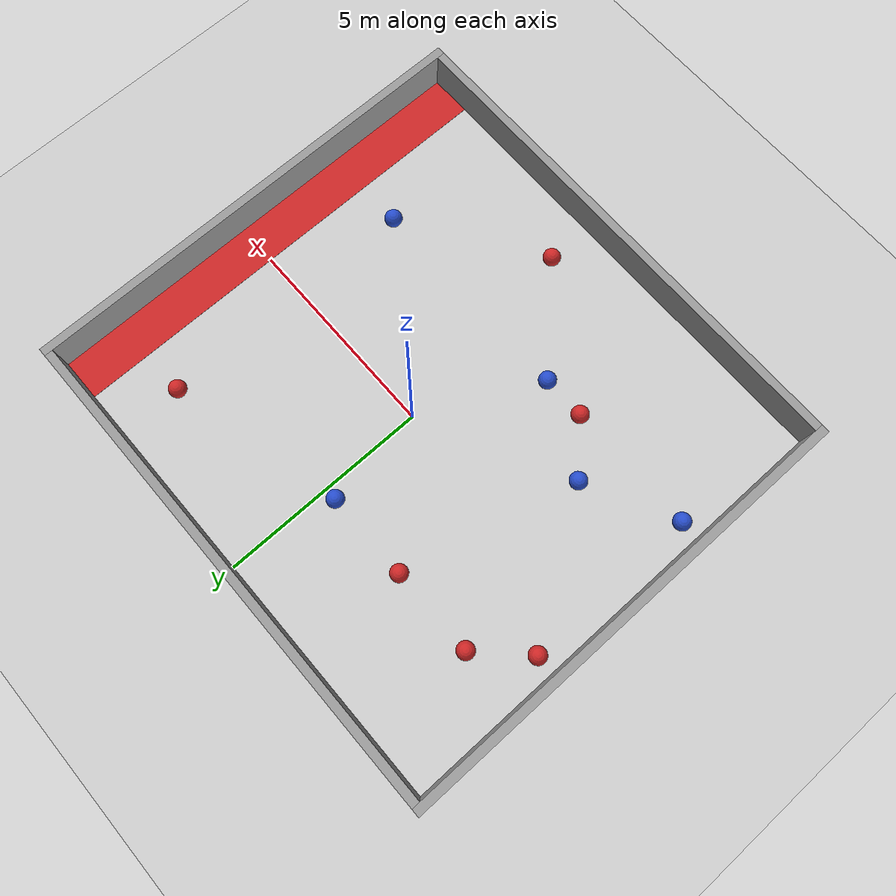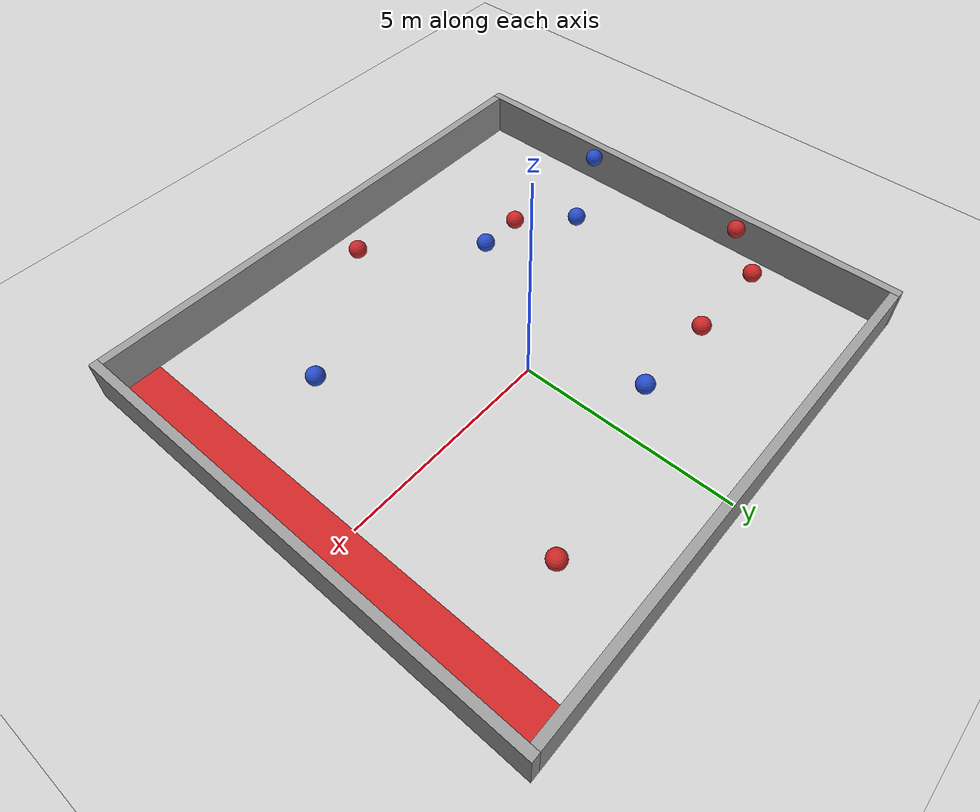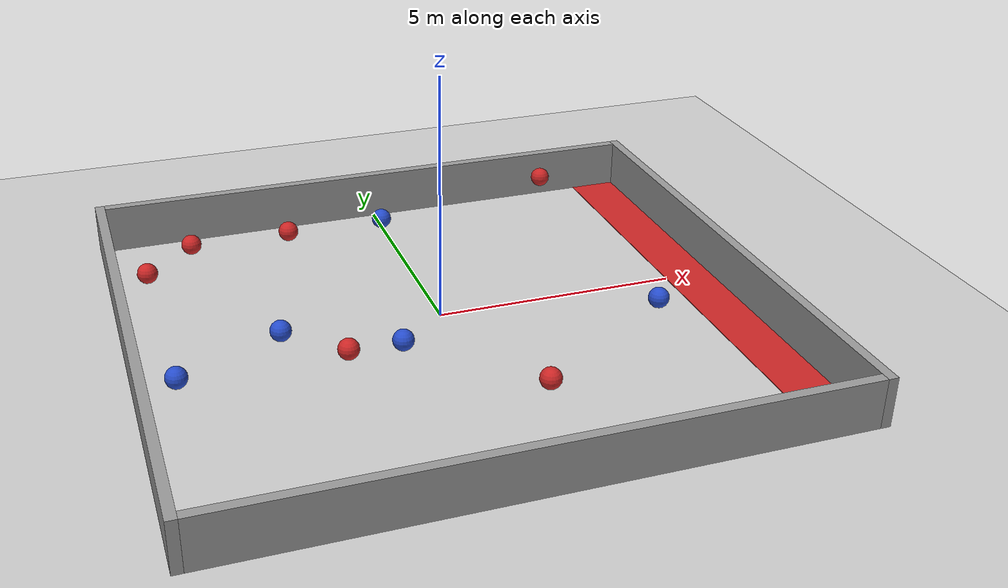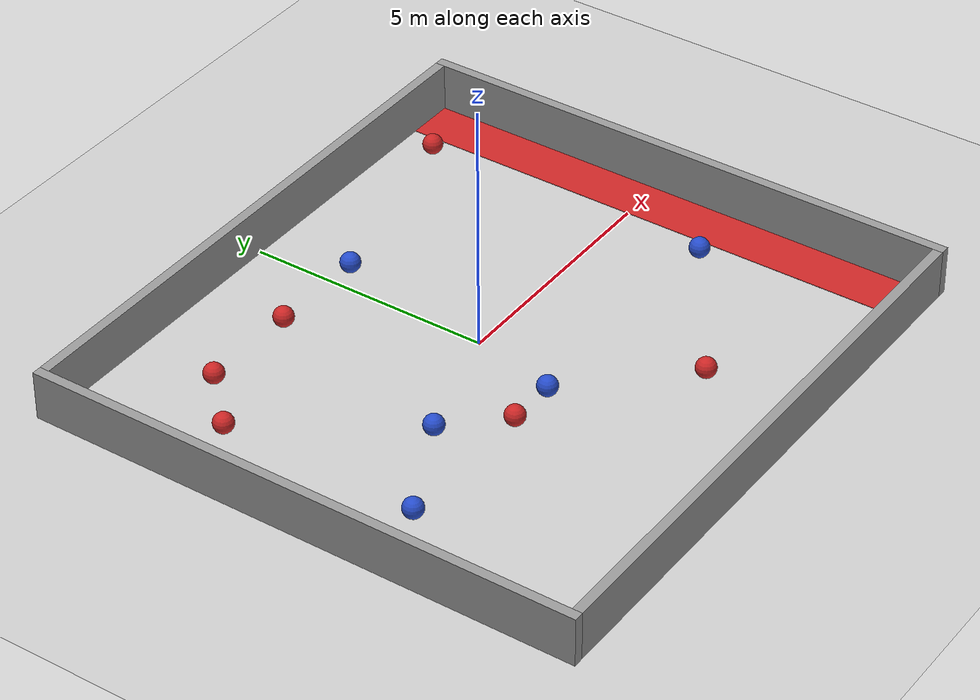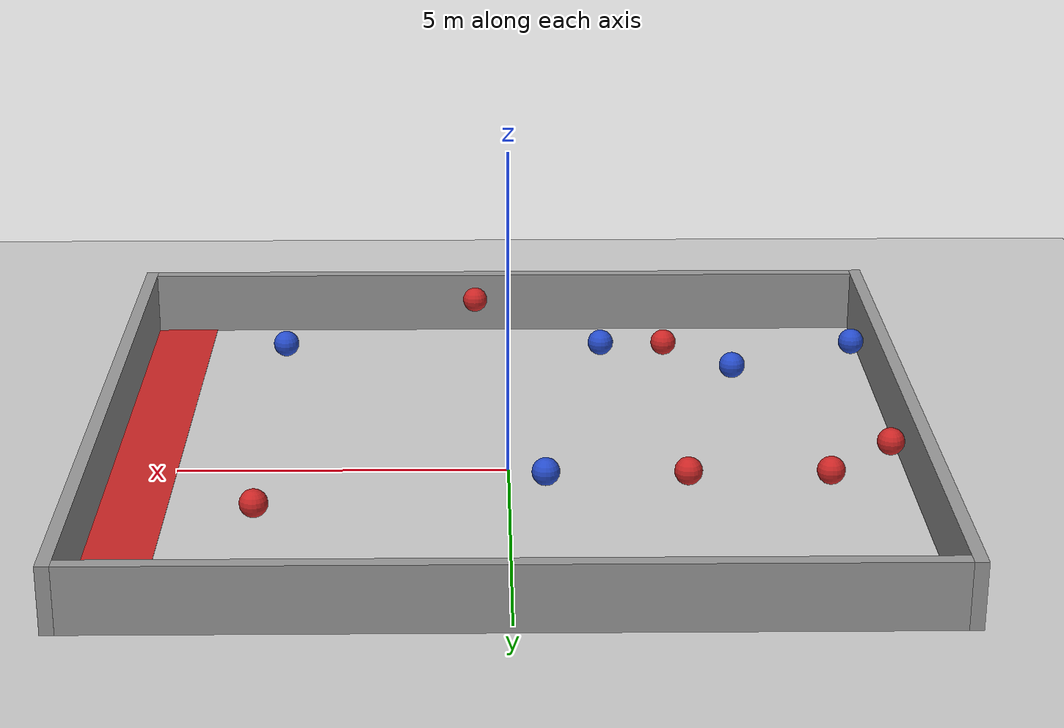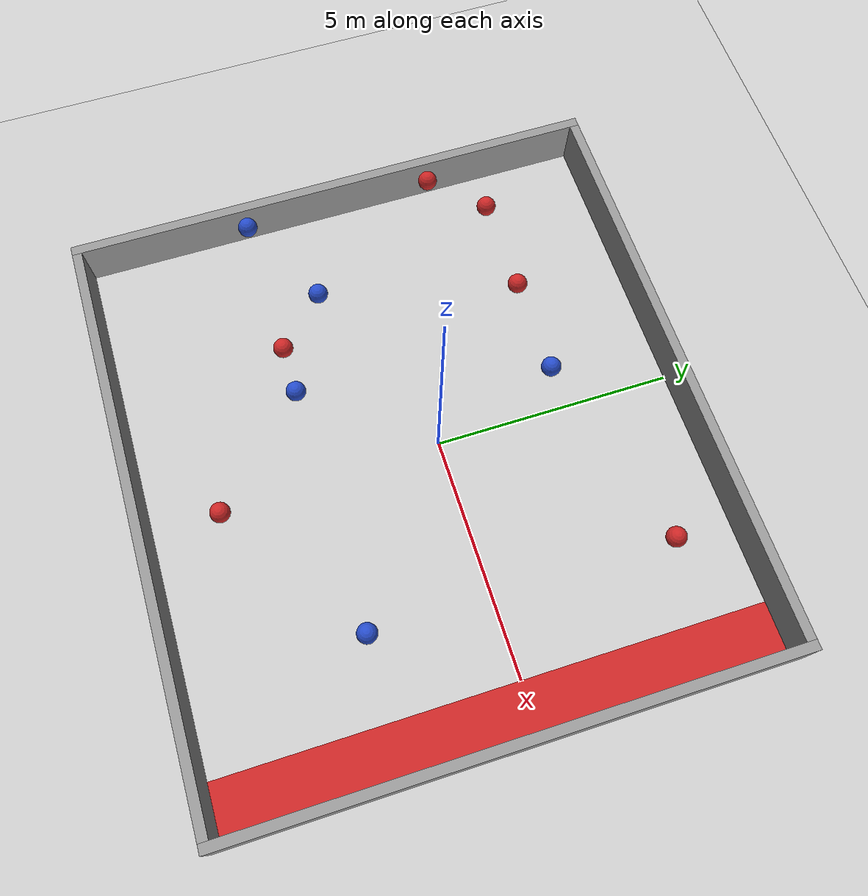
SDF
<gazebo version="1.0">
 <world name="default">
  <light name="sun" type="directional">
   <pose>0 0 10 0 -0 0</pose>
   <diffuse>0.8 0.8 0.8 1</diffuse>
   <specular>0.2 0.2 0.2 1</specular>
   <attenuation>
    <range>1000</range>
    <constant>0.9</constant>
    <linear>0.01</linear>
    <quadratic>0.001</quadratic>
   </attenuation>
   <direction>-0.5 0.1 -0.9</direction>
  </light>
  <model name="ground_plane">
   <static>1</static>
   <link name="link">
    <collision name="collision">
     <geometry><plane><normal>0 0 1</normal><size>100 100</size></plane></geometry>
     <surface><friction><ode><mu>100</mu><mu2>50</mu2></ode></friction></surface>
    </collision>
    <visual name="visual">
     <cast_shadows>0</cast_shadows>
     <geometry><plane><normal>0 0 1</normal><size>100 100</size></plane></geometry>
     <material>
      <script><uri>file://media/materials/scripts/gazebo.material</uri><name>Gazebo/Grey</name></script>
     </material>
    </visual>
    <velocity_decay><linear>0</linear><angular>0</angular></velocity_decay>
   </link>
  </model>
  <physics type="ode">
   <max_step_size>0.001</max_step_size>
   <real_time_factor>1</real_time_factor>
   <real_time_update_rate>1000</real_time_update_rate>
   <gravity>0 0 -9.8</gravity>
  </physics>
  <scene><ambient>0.4 0.4 0.4 1</ambient><background>0.7 0.7 0.7 1</background><shadows>1</shadows></scene>
  <spherical_coordinates>
   <surface_model>EARTH_WGS84</surface_model>
   <latitude_deg>0</latitude_deg>
   <longitude_deg>0</longitude_deg>
   <elevation>0</elevation>
   <heading_deg>0</heading_deg>
  </spherical_coordinates>
  <model name="W1">
   <pose>0.0 -6.1 0.5 0 0 0</pose>
   <link name="link">
    <inertial>
     <mass>1</mass>
     <inertia><ixx>1</ixx><ixy>0</ixy><ixz>0</ixz><iyy>1</iyy><iyz>0</iyz><izz>1</izz></inertia>
    </inertial>
    <collision name="collision"><geometry><box><size>12.0 0.2 1.0</size></box></geometry></collision>
    <visual name="visual">
     <geometry><box><size>12.0 0.2 1.0</size></box></geometry>
     <material>
      <script><uri>file://media/materials/scripts/gazebo.material</uri><name>Gazebo/Grey</name></script>
     </material>
    </visual>
    <velocity_decay><linear>0</linear><angular>0</angular></velocity_decay>
   </link>
   <static>1</static>
  </model>
  <model name="W2">
   <pose>-6.1 -0.5 0.5 0 0 0</pose>
   <link name="link">
    <inertial>
     <mass>1</mass>
     <inertia><ixx>1</ixx><ixy>0</ixy><ixz>0</ixz><iyy>1</iyy><iyz>0</iyz><izz>1</izz></inertia>
    </inertial>
    <collision name="collision"><geometry><box><size>0.2 11.4 1.0</size></box></geometry></collision>
    <visual name="visual">
     <geometry><box><size>0.2 11.4 1.0</size></box></geometry>
     <material>
      <script><uri>file://media/materials/scripts/gazebo.material</uri><name>Gazebo/Grey</name></script>
     </material>
    </visual>
    <velocity_decay><linear>0</linear><angular>0</angular></velocity_decay>
   </link>
   <static>1</static>
  </model>
  <model name="W3">
   <pose>0.0 5.1 0.5 0 0 0</pose>
   <link name="link">
    <inertial>
     <mass>1</mass>
     <inertia><ixx>1</ixx><ixy>0</ixy><ixz>0</ixz><iyy>1</iyy><iyz>0</iyz><izz>1</izz></inertia>
    </inertial>
    <collision name="collision"><geometry><box><size>12.0 0.2 1.0</size></box></geometry></collision>
    <visual name="visual">
     <geometry><box><size>12.0 0.2 1.0</size></box></geometry>
     <material>
      <script><uri>file://media/materials/scripts/gazebo.material</uri><name>Gazebo/Grey</name></script>
     </material>
    </visual>
    <velocity_decay><linear>0</linear><angular>0</angular></velocity_decay>
   </link>
   <static>1</static>
  </model>
  <model name="W4">
   <pose>6.1 -0.5 0.5 0 0 0</pose>
   <link name="link">
    <inertial>
     <mass>1</mass>
     <inertia><ixx>1</ixx><ixy>0</ixy><ixz>0</ixz><iyy>1</iyy><iyz>0</iyz><izz>1</izz></inertia>
    </inertial>
    <collision name="collision"><geometry><box><size>0.2 11.4 1.0</size></box></geometry></collision>
    <visual name="visual">
     <geometry><box><size>0.2 11.4 1.0</size></box></geometry>
     <material>
      <script><uri>file://media/materials/scripts/gazebo.material</uri><name>Gazebo/Grey</name></script>
     </material>
    </visual>
    <velocity_decay><linear>0</linear><angular>0</angular></velocity_decay>
   </link>
   <static>1</static>
  </model>
  <model name="FINISH">
   <pose>5.5 -0.5 0.0 0 0 0</pose>
   <link name="link">
    <inertial>
     <mass>1</mass>
     <inertia><ixx>1</ixx><ixy>0</ixy><ixz>0</ixz><iyy>1</iyy><iyz>0</iyz><izz>1</izz></inertia>
    </inertial>
    <visual name="visual">
     <geometry><box><size>1.0 11.0 0.01</size></box></geometry>
     <material>
      <script><uri>file://media/materials/scripts/gazebo.material</uri><name>Gazebo/Red</name></script>
     </material>
    </visual>
    <velocity_decay><linear>0</linear><angular>0</angular></velocity_decay>
    <gravity>0</gravity>
   </link>
   <static>1</static>
  </model>
  <model name="S1">
   <pose>-5.5 -2.5 1.1 0 0 0</pose>
   <link name="link">
    <inertial>
     <mass>1</mass>
     <inertia><ixx>1</ixx><ixy>0</ixy><ixz>0</ixz><iyy>1</iyy><iyz>0</iyz><izz>1</izz></inertia>
    </inertial>
    <visual name="visual">
     <geometry><sphere><radius>.2</radius></sphere></geometry>
     <material>
      <script><uri>file://media/materials/scripts/gazebo.material</uri><name>Gazebo/Blue</name></script>
     </material>
    </visual>
    <velocity_decay><linear>0</linear><angular>0</angular></velocity_decay>
    <gravity>0</gravity>
   </link>
   <static>1</static>
  </model>
  <model name="S2">
   <pose>-5.5 1.5 1.1 0 0 0</pose>
   <link name="link">
    <inertial>
     <mass>1</mass>
     <inertia><ixx>1</ixx><ixy>0</ixy><ixz>0</ixz><iyy>1</iyy><iyz>0</iyz><izz>1</izz></inertia>
    </inertial>
    <visual name="visual">
     <geometry><sphere><radius>.2</radius></sphere></geometry>
     <material>
      <script><uri>file://media/materials/scripts/gazebo.material</uri><name>Gazebo/Red</name></script>
     </material>
    </visual>
    <velocity_decay><linear>0</linear><angular>0</angular></velocity_decay>
    <gravity>0</gravity>
   </link>
   <static>1</static>
  </model>
  <model name="S3">
   <pose>-4.5 2.5 1.1 0 0 0</pose>
   <link name="link">
    <inertial>
     <mass>1</mass>
     <inertia><ixx>1</ixx><ixy>0</ixy><ixz>0</ixz><iyy>1</iyy><iyz>0</iyz><izz>1</izz></inertia>
    </inertial>
    <visual name="visual">
     <geometry><sphere><radius>.2</radius></sphere></geometry>
     <material>
      <script><uri>file://media/materials/scripts/gazebo.material</uri><name>Gazebo/Red</name></script>
     </material>
    </visual>
    <velocity_decay><linear>0</linear><angular>0</angular></velocity_decay>
    <gravity>0</gravity>
   </link>
   <static>1</static>
  </model>
  <model name="S4">
   <pose>-3.5 -1.5 1.1 0 0 0</pose>
   <link name="link">
    <inertial>
     <mass>1</mass>
     <inertia><ixx>1</ixx><ixy>0</ixy><ixz>0</ixz><iyy>1</iyy><iyz>0</iyz><izz>1</izz></inertia>
    </inertial>
    <visual name="visual">
     <geometry><sphere><radius>.2</radius></sphere></geometry>
     <material>
      <script><uri>file://media/materials/scripts/gazebo.material</uri><name>Gazebo/Blue</name></script>
     </material>
    </visual>
    <velocity_decay><linear>0</linear><angular>0</angular></velocity_decay>
    <gravity>0</gravity>
   </link>
   <static>1</static>
  </model>
  <model name="S5">
   <pose>-2.5 -2.5 1.1 0 0 0</pose>
   <link name="link">
    <inertial>
     <mass>1</mass>
     <inertia><ixx>1</ixx><ixy>0</ixy><ixz>0</ixz><iyy>1</iyy><iyz>0</iyz><izz>1</izz></inertia>
    </inertial>
    <visual name="visual">
     <geometry><sphere><radius>.2</radius></sphere></geometry>
     <material>
      <script><uri>file://media/materials/scripts/gazebo.material</uri><name>Gazebo/Red</name></script>
     </material>
    </visual>
    <velocity_decay><linear>0</linear><angular>0</angular></velocity_decay>
    <gravity>0</gravity>
   </link>
   <static>1</static>
  </model>
  <model name="S6">
   <pose>-2.5 2.5 1.1 0 0 0</pose>
   <link name="link">
    <inertial>
     <mass>1</mass>
     <inertia><ixx>1</ixx><ixy>0</ixy><ixz>0</ixz><iyy>1</iyy><iyz>0</iyz><izz>1</izz></inertia>
    </inertial>
    <visual name="visual">
     <geometry><sphere><radius>.2</radius></sphere></geometry>
     <material>
      <script><uri>file://media/materials/scripts/gazebo.material</uri><name>Gazebo/Red</name></script>
     </material>
    </visual>
    <velocity_decay><linear>0</linear><angular>0</angular></velocity_decay>
    <gravity>0</gravity>
   </link>
   <static>1</static>
  </model>
  <model name="S7">
   <pose>-1.5 -2.5 1.1 0 0 0</pose>
   <link name="link">
    <inertial>
     <mass>1</mass>
     <inertia><ixx>1</ixx><ixy>0</ixy><ixz>0</ixz><iyy>1</iyy><iyz>0</iyz><izz>1</izz></inertia>
    </inertial>
    <visual name="visual">
     <geometry><sphere><radius>.2</radius></sphere></geometry>
     <material>
      <script><uri>file://media/materials/scripts/gazebo.material</uri><name>Gazebo/Blue</name></script>
     </material>
    </visual>
    <velocity_decay><linear>0</linear><angular>0</angular></velocity_decay>
    <gravity>0</gravity>
   </link>
   <static>1</static>
  </model>
  <model name="S8">
   <pose>-0.5 2.5 1.1 0 0 0</pose>
   <link name="link">
    <inertial>
     <mass>1</mass>
     <inertia><ixx>1</ixx><ixy>0</ixy><ixz>0</ixz><iyy>1</iyy><iyz>0</iyz><izz>1</izz></inertia>
    </inertial>
    <visual name="visual">
     <geometry><sphere><radius>.2</radius></sphere></geometry>
     <material>
      <script><uri>file://media/materials/scripts/gazebo.material</uri><name>Gazebo/Blue</name></script>
     </material>
    </visual>
    <velocity_decay><linear>0</linear><angular>0</angular></velocity_decay>
    <gravity>0</gravity>
   </link>
   <static>1</static>
  </model>
  <model name="S9">
   <pose>0.5 -4.5 1.1 0 0 0</pose>
   <link name="link">
    <inertial>
     <mass>1</mass>
     <inertia><ixx>1</ixx><ixy>0</ixy><ixz>0</ixz><iyy>1</iyy><iyz>0</iyz><izz>1</izz></inertia>
    </inertial>
    <visual name="visual">
     <geometry><sphere><radius>.2</radius></sphere></geometry>
     <material>
      <script><uri>file://media/materials/scripts/gazebo.material</uri><name>Gazebo/Red</name></script>
     </material>
    </visual>
    <velocity_decay><linear>0</linear><angular>0</angular></velocity_decay>
    <gravity>0</gravity>
   </link>
   <static>1</static>
  </model>
  <model name="S10">
   <pose>3.5 -2.5 1.1 0 0 0</pose>
   <link name="link">
    <inertial>
     <mass>1</mass>
     <inertia><ixx>1</ixx><ixy>0</ixy><ixz>0</ixz><iyy>1</iyy><iyz>0</iyz><izz>1</izz></inertia>
    </inertial>
    <visual name="visual">
     <geometry><sphere><radius>.2</radius></sphere></geometry>
     <material>
      <script><uri>file://media/materials/scripts/gazebo.material</uri><name>Gazebo/Blue</name></script>
     </material>
    </visual>
    <velocity_decay><linear>0</linear><angular>0</angular></velocity_decay>
    <gravity>0</gravity>
   </link>
   <static>1</static>
  </model>
  <model name="S11">
   <pose>3.5 3.5 1.1 0 0 0</pose>
   <link name="link">
    <inertial>
     <mass>1</mass>
     <inertia><ixx>1</ixx><ixy>0</ixy><ixz>0</ixz><iyy>1</iyy><iyz>0</iyz><izz>1</izz></inertia>
    </inertial>
    <visual name="visual">
     <geometry><sphere><radius>.2</radius></sphere></geometry>
     <material>
      <script><uri>file://media/materials/scripts/gazebo.material</uri><name>Gazebo/Red</name></script>
     </material>
    </visual>
    <velocity_decay><linear>0</linear><angular>0</angular></velocity_decay>
    <gravity>0</gravity>
   </link>
   <static>1</static>
  </model>
 </world>
</gazebo>
